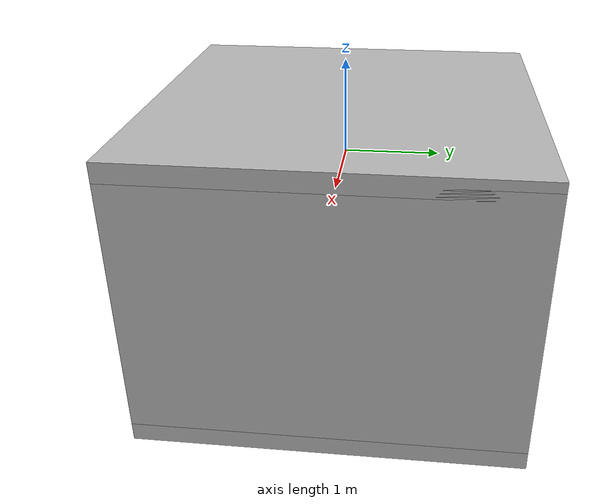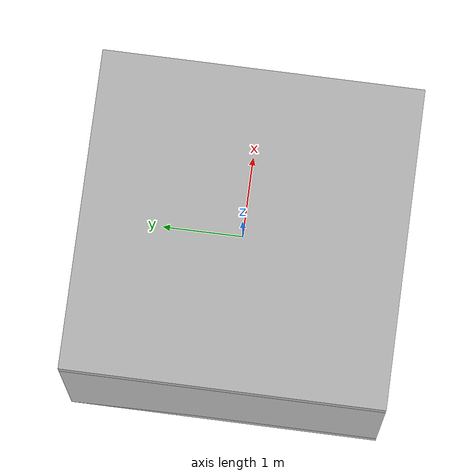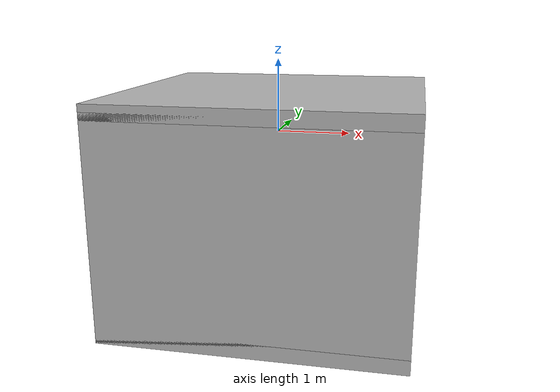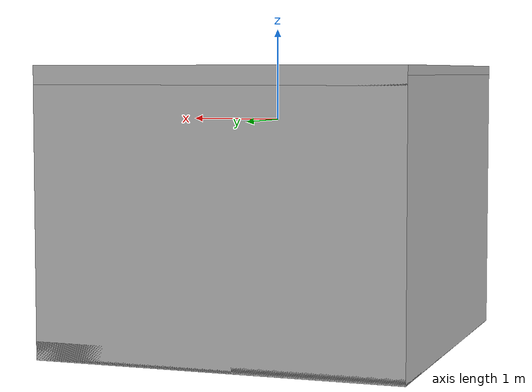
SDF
<?xml version="1.0" ?>
<sdf version="1.5">
  <model name="ocean_box">
    <static>true</static>
    <link name="link">

      <visual name="ground">
        <cast_shadows>false</cast_shadows>
        <pose>0 0 -2.4 0 0 0</pose>
        <geometry>
          <box>
            <size>4 4 .2</size>
          </box>
        </geometry>
        <material>
          <script>
            <uri>file://Media/materials/scripts/sand.material</uri>
            <name>UUVSimulator/SandAndStones</name>
          </script>
        </material>
      </visual>

      <collision name="ground">
        <pose>0 0 -2.4 0 0 0</pose>
        <geometry>
          <box>
            <size>4 4 .2</size>
          </box>
        </geometry>
      </collision>

      <visual name="surface">
        <cast_shadows>false</cast_shadows>
        <pose>0 0 0.5 0 0 0</pose>
        <geometry>
          <box>
            <size>4 4 .2</size>
          </box>
        </geometry>
        <material>
          <script>
            <uri>file://Media/materials/scripts/water.material</uri>
            <name>UUVSimulator/StaticDeepWater</name>
          </script>
        </material>
      </visual>

      <visual name="north">
        <cast_shadows>false</cast_shadows>
        <pose>0 0 -1 0 0 0</pose>
        <geometry>
          <box>
            <size>4 4 3</size>
          </box>
        </geometry>
        <material>
          <script>
            <uri>file://Media/materials/scripts/water.material</uri>
            <name>UUVSimulator/SeaWall</name>
          </script>
        </material>
      </visual>

    </link>
  </model>
</sdf>
